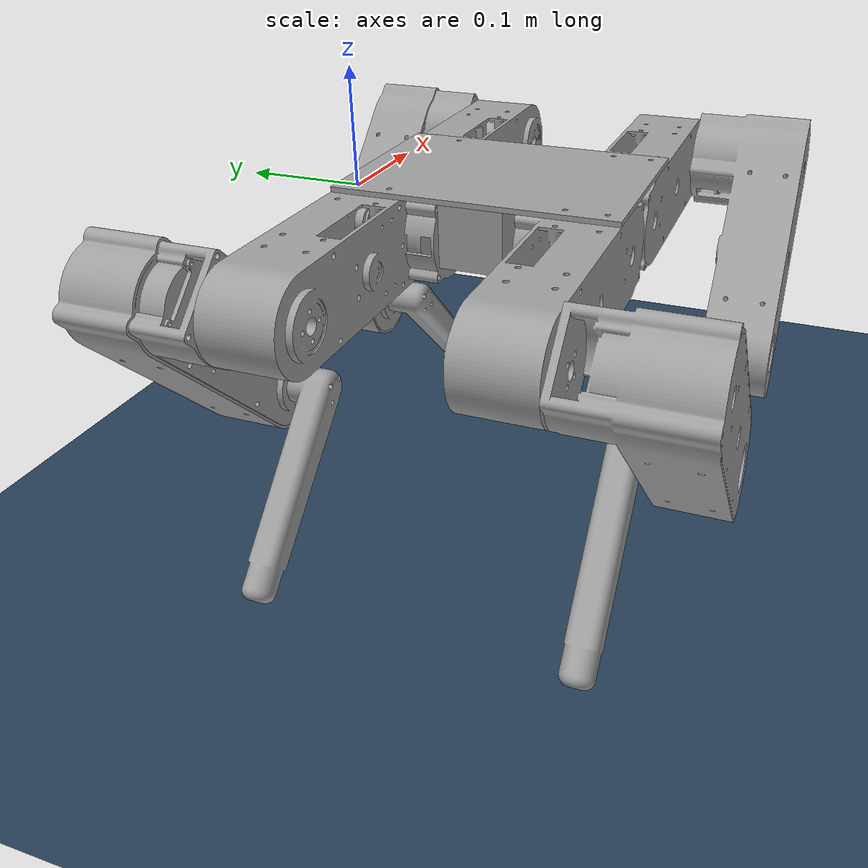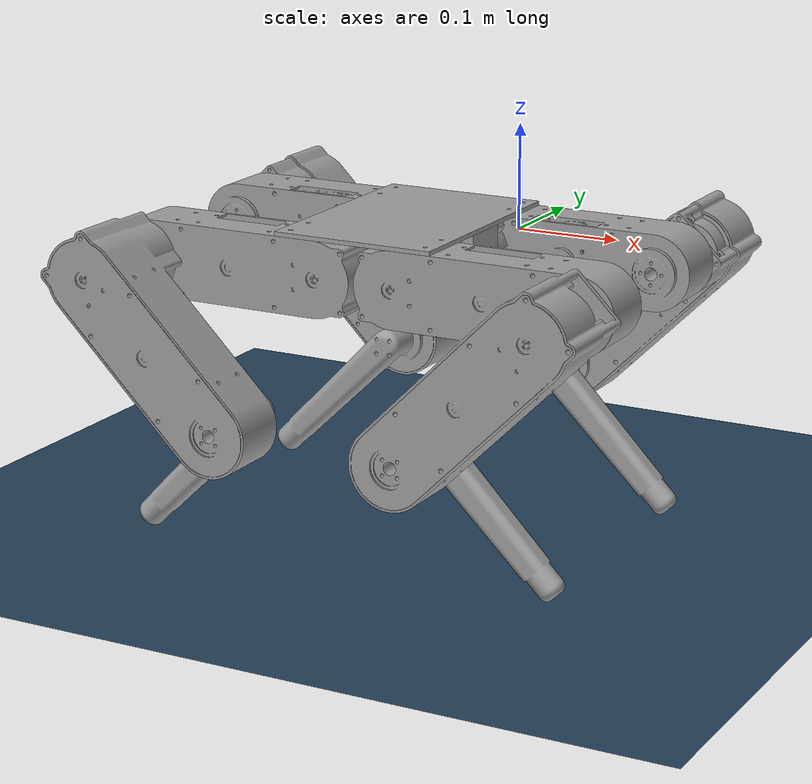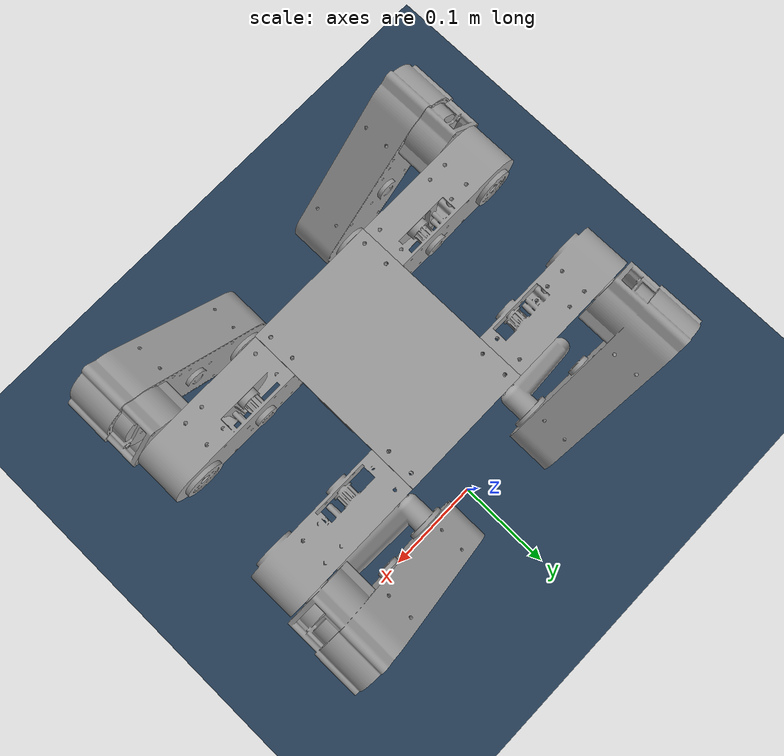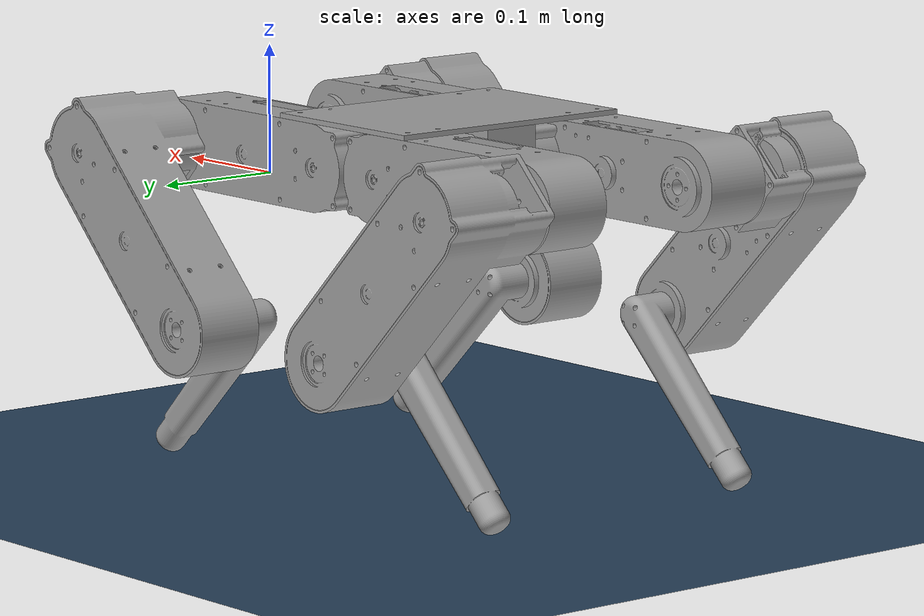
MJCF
<mujoco model="quadurdf">
  <compiler angle="radian"/>
  <asset>
    <mesh name="base_link" file="base_link.stl" scale="0.001 0.001 0.001"/>
    <mesh name="ACTUATOR_V2__HIP__v3_3" file="ACTUATOR_V2__HIP__v3_3.stl" scale="0.001 0.001 0.001"/>
    <mesh name="ACTUATOR_V2__HIP__v3_1" file="ACTUATOR_V2__HIP__v3_1.stl" scale="0.001 0.001 0.001"/>
    <mesh name="ACTUATOR_V2__HIP__v3_4" file="ACTUATOR_V2__HIP__v3_4.stl" scale="0.001 0.001 0.001"/>
    <mesh name="ACTUATOR_V2__HIP__v3_2" file="ACTUATOR_V2__HIP__v3_2.stl" scale="0.001 0.001 0.001"/>
    <mesh name="ACTUATOR_V2__KNEE__v6_1" file="ACTUATOR_V2__KNEE__v6_1.stl" scale="0.001 0.001 0.001"/>
    <mesh name="ACTUATOR_V2__KNEE__v6_2" file="ACTUATOR_V2__KNEE__v6_2.stl" scale="0.001 0.001 0.001"/>
    <mesh name="ACTUATOR_V2__KNEE__v6_3" file="ACTUATOR_V2__KNEE__v6_3.stl" scale="0.001 0.001 0.001"/>
    <mesh name="ACTUATOR_V2__KNEE__v6_4" file="ACTUATOR_V2__KNEE__v6_4.stl" scale="0.001 0.001 0.001"/>
    <mesh name="ANKLE_v3_1" file="ANKLE_v3_1.stl" scale="0.001 0.001 0.001"/>
    <mesh name="ANKLE_v3_2" file="ANKLE_v3_2.stl" scale="0.001 0.001 0.001"/>
    <mesh name="ANKLE_v3_3" file="ANKLE_v3_3.stl" scale="0.001 0.001 0.001"/>
    <mesh name="ANKLE_v3_4" file="ANKLE_v3_4.stl" scale="0.001 0.001 0.001"/>
    <mesh name="6200_MAH_BATTERY_v1_1" file="6200_MAH_BATTERY_v1_1.stl" scale="0.001 0.001 0.001"/>
    <texture name="grid" type="2d" builtin="checker" rgb1=".1 .2 .3"
    rgb2=".2 .3 .4" width="300" height="300" mark="edge" markrgb=".2 .3 .4"/>
    <material name="grid" texture="grid" texrepeat="2 2" texuniform="true"
    reflectance=".2"/>
  </asset>
  <worldbody>
    <geom name="ground" type="plane" pos="0 0 -.249" size="2 2 .1" material="grid" solimp=".99 .99 .01" solref=".001 1"/>
    <body name='robot'>
      <freejoint/>
      <site name='imu' type='box' size='0.01 0.01 0.01' pos='0 -0.15 0' />
      <body name='base_link' pos='0 0 0'>
        <geom type="mesh" rgba="0.627451 0.627451 0.627451 1" mesh="base_link"/>
      </body>
      <body name='ACTUATOR_V2__HIP__v3_3'>
        <inertial pos="-0.0382683 0.00233144 -0.034911" quat="0.0541169 0.705295 -0.0507367 0.705022" mass="5.04735" diaginertia="0.030841 0.0306039 0.00412905"/>
        <geom type="mesh" rgba="0.627451 0.627451 0.627451 1" mesh="ACTUATOR_V2__HIP__v3_3"/>
      </body>
      <body name='ACTUATOR_V2__HIP__v3_1'>
        <geom type="mesh" rgba="0.627451 0.627451 0.627451 1" mesh="ACTUATOR_V2__HIP__v3_1"/>
        <inertial pos="0.0382683 -0.0276686 -0.034903" quat="-0.0541169 0.705295 0.0507367 0.705022" mass="5.04735" diaginertia="0.030841 0.0306039 0.00412905"/>
      </body>
      <body name='ACTUATOR_V2__HIP__v3_4'>
        <inertial pos="-0.0382683 -0.00233144 -0.034903" quat="-0.0507367 0.705022 0.0541169 0.705295" mass="5.04735" diaginertia="0.030841 0.0306039 0.00412905"/>
        <geom type="mesh" rgba="0.627451 0.627451 0.627451 1" mesh="ACTUATOR_V2__HIP__v3_4"/>
      </body>
      <body name='ACTUATOR_V2__HIP__v3_2'>
        <inertial pos="0.0382683 -0.00233144 -0.034911" quat="0.0507367 0.705022 -0.0541169 0.705295" mass="5.04735" diaginertia="0.030841 0.0306039 0.00412905"/>
        <geom type="mesh" rgba="0.627451 0.627451 0.627451 1" mesh="ACTUATOR_V2__HIP__v3_2"/>
      </body>
      <geom type="mesh" rgba="0.627451 0.627451 0.627451 1" mesh="6200_MAH_BATTERY_v1_1" mass='100'/>
      <body name="ACTUATOR_V2__KNEE__v6_4" pos="-0.25087 -0.0432 0">
        <inertial pos="0.0487287 0.0609505 -0.0487232" quat="0.629585 -0.227699 -0.31275 0.673768" mass="5.55861" diaginertia="0.0346723 0.034601 0.00491076"/>
        <joint name="Revolute 8" pos="0 0 0" axis="0 -1 0"/>
        <geom pos="0.25087 0.0432 0" type="mesh" rgba="0.627451 0.627451 0.627451 1" mesh="ACTUATOR_V2__KNEE__v6_4"/>
        <body name="ANKLE_v3_3" pos="0.124359 0.0405 -0.124359">
          <inertial pos="-0.0487412 -0.0216477 -0.0487408" quat="0.923789 -0.0129543 0.382646 0.00536586" mass="0.925771" diaginertia="0.002532 0.0025279 0.000106096"/>
          <joint name="Revolute 11" pos="0 0 0" axis="0 1 0"/>
          <geom pos="0.126511 0.0027 0.124359" type="mesh" rgba="0.627451 0.627451 0.627451 1" mesh="ANKLE_v3_3"/>
        </body>
      </body>
      <body name="ACTUATOR_V2__KNEE__v6_1" pos="0.17587 -0.0432 0">
        <inertial pos="-0.0487236 0.0609505 -0.0487283" quat="0.666332 0.315419 0.224036 0.637433" mass="5.55861" diaginertia="0.0346723 0.034601 0.00491076"/>
        <joint name="Revolute 5" pos="0 0 0" axis="0 -1 0"/>
        <geom pos="-0.17587 0.0432 0" type="mesh" rgba="0.627451 0.627451 0.627451 1" mesh="ACTUATOR_V2__KNEE__v6_1"/>
        <body name="ANKLE_v3_1" pos="-0.124359 0.0405 -0.124359">
          <inertial pos="0.0487412 -0.0216477 -0.0487408" quat="0.0129543 0.923789 -0.00536586 0.382646" mass="0.925771" diaginertia="0.002532 0.0025279 0.000106096"/>
          <joint name="Revolute 9" pos="0 0 0" axis="0 -1 0"/>
          <geom pos="-0.051511 0.0027 0.124359" type="mesh" rgba="0.627451 0.627451 0.627451 1" mesh="ANKLE_v3_1"/>
        </body>
      </body>
      <body name="ACTUATOR_V2__KNEE__v6_3" pos="-0.25087 -0.253 0">
        <inertial pos="0.0487236 -0.0609505 -0.0487283" quat="0.315419 0.666332 0.637433 0.224036" mass="5.55861" diaginertia="0.0346723 0.034601 0.00491076"/>
        <joint name="Revolute 7" pos="0 0 0" axis="0 1 0"/>
        <geom pos="0.25087 0.253 0" type="mesh" rgba="0.627451 0.627451 0.627451 1" mesh="ACTUATOR_V2__KNEE__v6_3"/>
        <body name="ANKLE_v3_4" pos="0.124359 -0.0405 -0.124359">
          <inertial pos="-0.0487412 0.0216477 -0.0487408" quat="0.923789 0.0129543 0.382646 -0.00536586" mass="0.925771" diaginertia="0.002532 0.0025279 0.000106096"/>
          <joint name="Revolute 12" pos="0 0 0" axis="0 -1 0"/>
          <geom pos="0.126511 0.2935 0.124359" type="mesh" rgba="0.627451 0.627451 0.627451 1" mesh="ANKLE_v3_4"/>
        </body>
      </body>
      <body name="ACTUATOR_V2__KNEE__v6_2" pos="0.17587 -0.253 0">
        <inertial pos="-0.0487287 -0.0609505 -0.0487232" quat="0.629585 0.227699 0.31275 0.673768" mass="5.55861" diaginertia="0.0346723 0.034601 0.00491076"/>
        <joint name="Revolute 6" pos="0 0 0" axis="0 1 0"/>
        <geom pos="-0.17587 0.253 0" type="mesh" rgba="0.627451 0.627451 0.627451 1" mesh="ACTUATOR_V2__KNEE__v6_2"/>
        <body name="ANKLE_v3_2" pos="-0.124359 -0.0405 -0.124359">
          <inertial pos="0.0487412 0.0216477 -0.0487408" quat="-0.0129543 0.923789 0.00536586 0.382646" mass="0.925771" diaginertia="0.002532 0.0025279 0.000106096"/>
          <joint name="Revolute 10" pos="0 0 0" axis="0 -1 0"/>
          <geom pos="-0.051511 0.2935 0.124359" type="mesh" rgba="0.627451 0.627451 0.627451 1" mesh="ANKLE_v3_2"/>
        </body>
      </body>
    </body>
  </worldbody>

  <actuator>
    <position gear='10' joint='Revolute 8' name='motor 11' kp='3' kv='0.01' ctrlrange='-5 5'/>
    <position gear='10' joint='Revolute 11' name='motor 12' kp='3' kv='0.01' ctrlrange='-5 5'/>
    <position gear='10' joint='Revolute 5' name='motor 31' kp='3' kv='0.01' ctrlrange='-5 5'/>
    <position gear='10' joint='Revolute 9' name='motor 32' kp='3' kv='0.01' ctrlrange='-5 5'/>
    <position gear='10' joint='Revolute 7' name='motor 21' kp='3' kv='0.01' ctrlrange='-5 5'/>
    <position gear='10' joint='Revolute 12' name='motor 22' kp='3' kv='0.01' ctrlrange='-5 5'/>
    <position gear='10' joint='Revolute 6' name='motor 41' kp='3' kv='0.01' ctrlrange='-5 5'/>
    <position gear='10' joint='Revolute 10' name='motor 42' kp='3' kv='0.01' ctrlrange='-5 5'/>
  </actuator>

  <sensor>
    <accelerometer site='imu'/>
  </sensor>

  <option integrator='implicit'/>
</mujoco>
